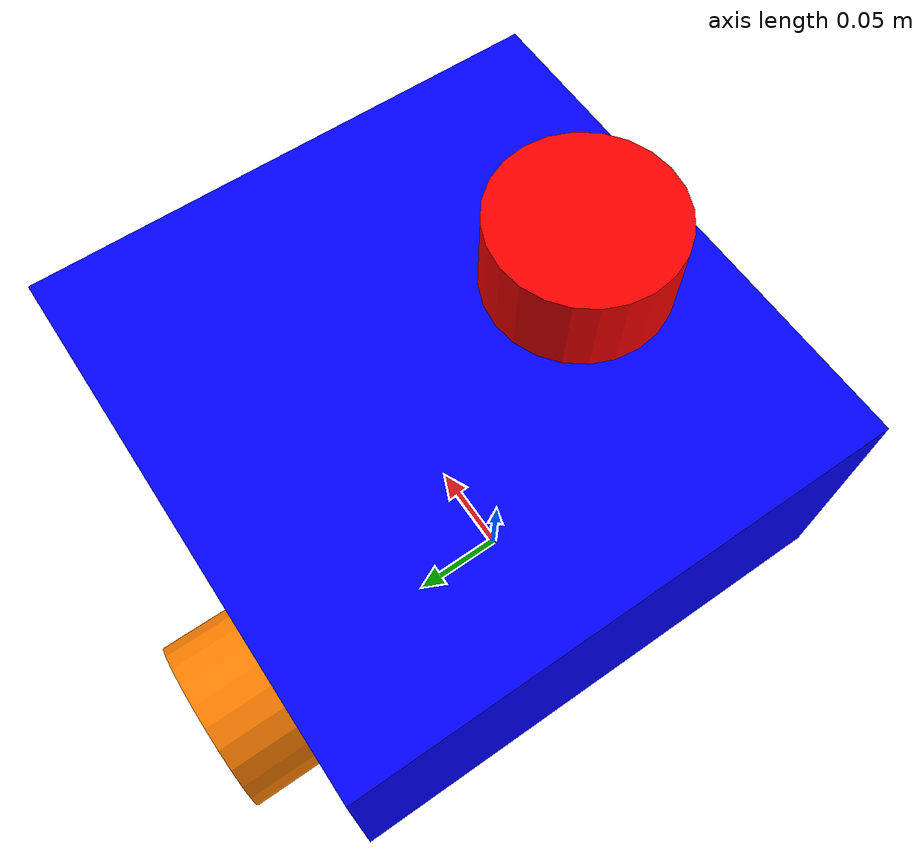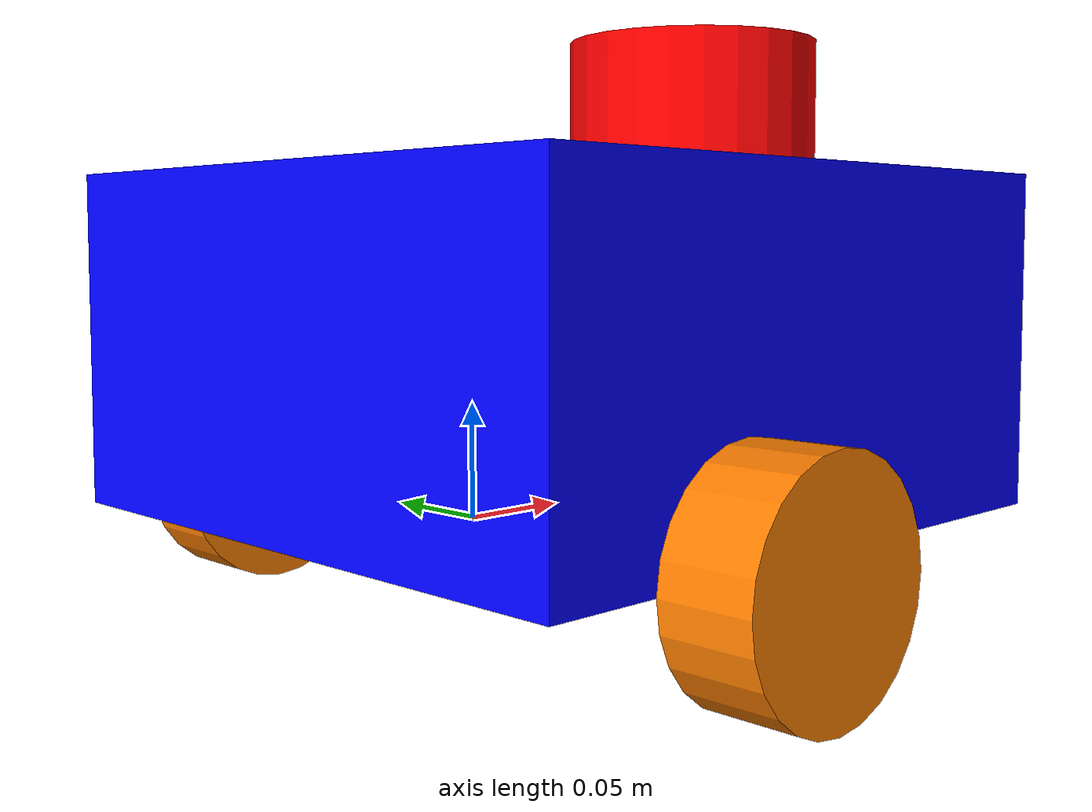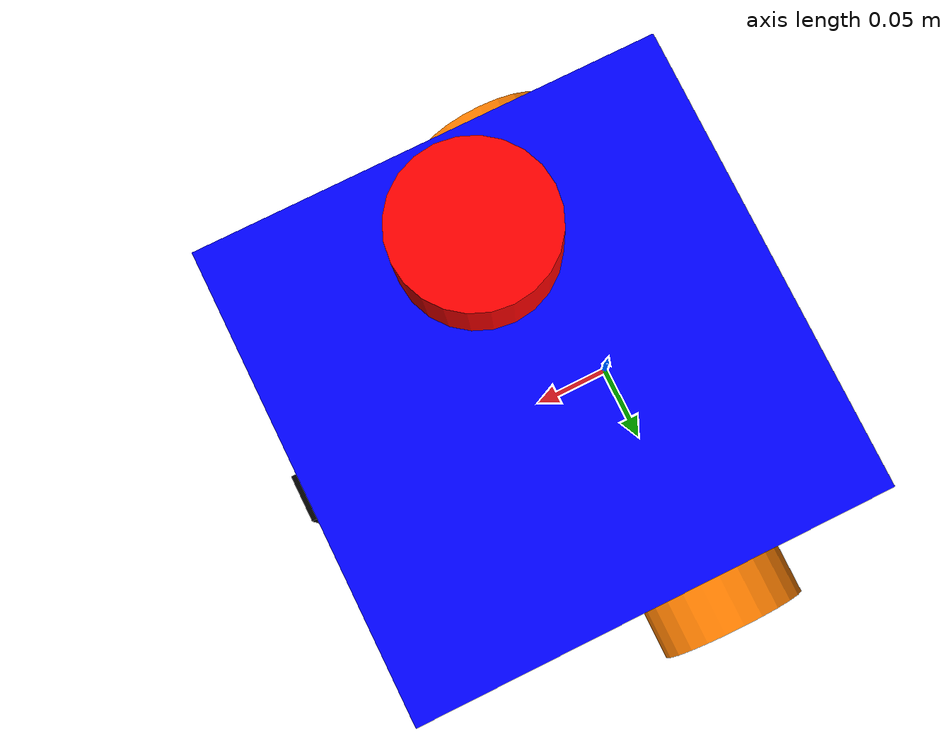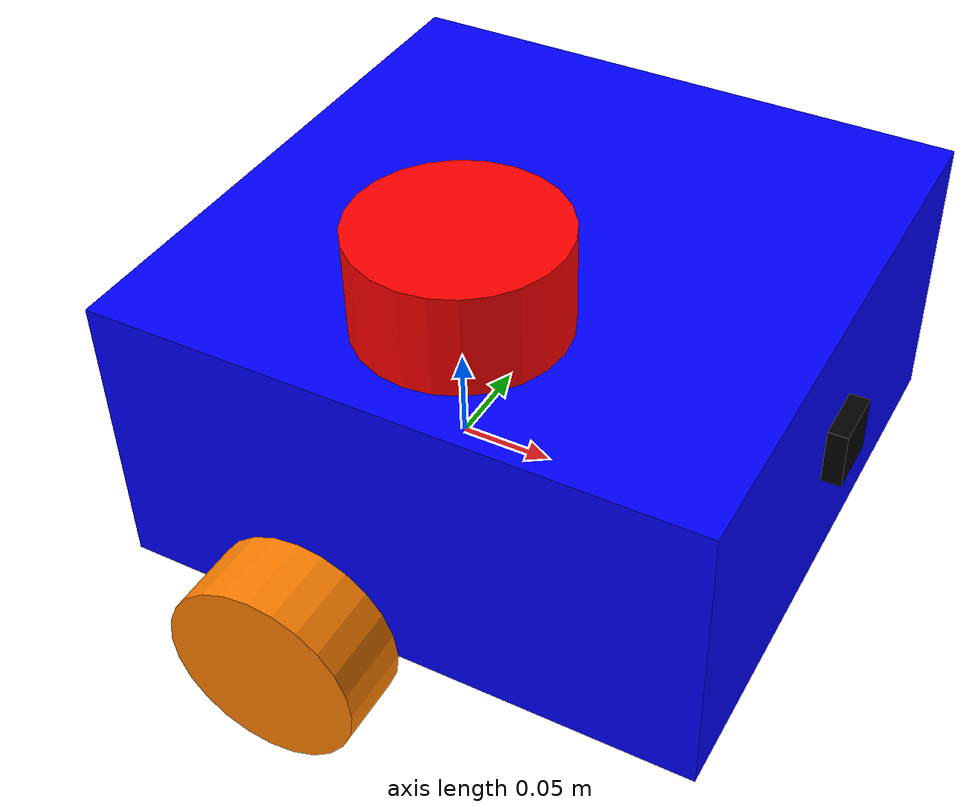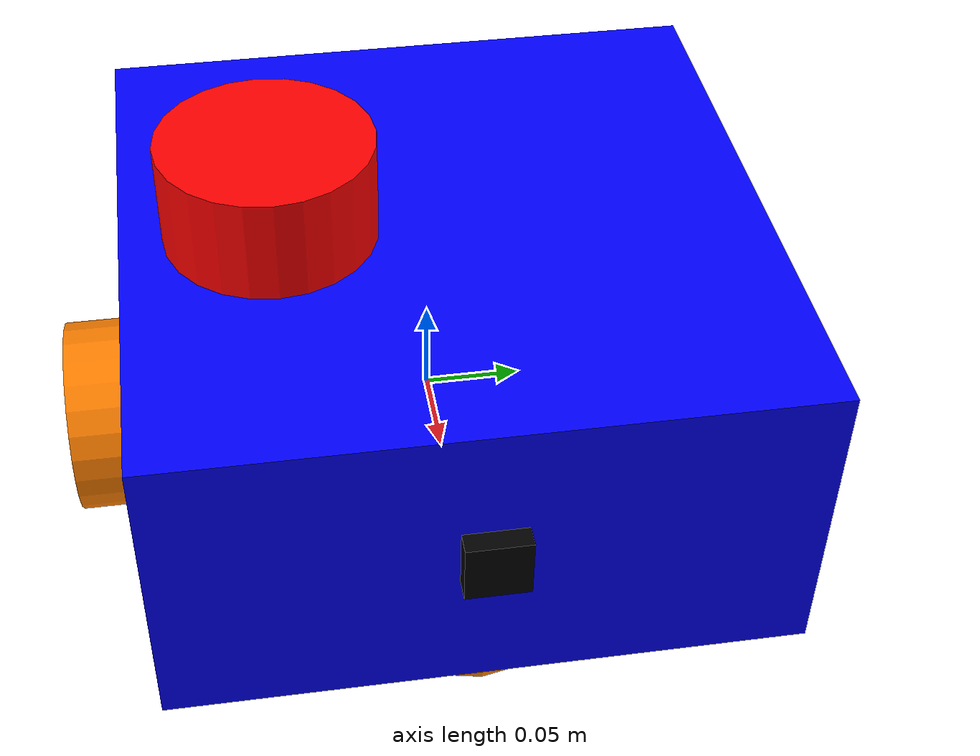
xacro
<?xml version="1.0"?>
<robot xmlns:xacro="http://www.ros.org/wiki/xacro"  name="robot">

    <xacro:arg name="use_ros2_control" default="true"/>
    <xacro:include filename="robot_core.xacro"/>

    <xacro:if value="$(arg use_ros2_control)">
        <xacro:include filename="ros2_control.xacro"/>
    </xacro:if>

    <xacro:unless value="$(arg use_ros2_control)">
        <xacro:include filename="gazebo_control.xacro"/>
    </xacro:unless>

    <xacro:include filename="lidar.xacro"/>
    <xacro:include filename="camera.xacro"/>

</robot>

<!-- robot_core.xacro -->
<robot xmlns:xacro="http://www.ros.org/wiki/xacro" >

    <xacro:include filename="inertial_macros.xacro"/>

    <material name="white">
        <color rgba="1 1 1 1"/>
    </material>
    <material name="orange">
        <color rgba="1 0.5 0 1"/>
    </material>
    <material name="black">
        <color rgba="0 0 0 1"/>
    </material>
    <material name="blue">
        <color rgba="0 0 1 1"/>
    </material>
    <material name="red">
        <color rgba="1 0 0 1"/>
    </material>

    <!-- BASE_LINK -->

    <link name="base_link">
    </link>

    <joint name="base_chassis_joint" type="fixed">
        <parent link="base_link"/>
        <child link="chassis"/>
        <origin xyz="-0.1 0 0" rpy="0 0 0"/>
    </joint>

    <link name="chassis">
        <visual>
            <origin xyz="0.15 0 0.075" rpy="0 0 0"/>
            <geometry>
                <box size="0.3 0.3 0.15"/>
            </geometry>
            <material name="blue"/>
        </visual>
        <collision>
            <origin xyz="0.15 0 0.075" rpy="0 0 0"/>
            <geometry>
                <box size="0.3 0.3 0.15"/>
            </geometry>
        </collision>
        <xacro:inertial_box mass="0.5" x="0.3" y="0.3" z="0.15">
            <origin xyz="0.15 0 0.075" rpy="0 0 0"/>
        </xacro:inertial_box>
    </link>

    <gazebo reference="chassis">
        <material>Gazebo/Blue</material>
    </gazebo>

    <!-- LEFT_WHEEL_LINK -->

    <joint name="left_wheel_joint" type="continuous">
        <parent link="base_link"/>
        <child link="left_wheel"/>
        <origin xyz="0 0.17 0" rpy="-1.57 0 0"/>
        <axis xyz="0 0 1"/>
    </joint>

    <link name="left_wheel">
        <visual>
            <geometry>
                <cylinder radius="0.05" length="0.04"/>
            </geometry>
            <material name="orange"/>
        </visual>
        <collision>
            <geometry>
                <sphere radius="0.05"/>
            </geometry>
        </collision>
        <xacro:inertial_cylinder mass="0.1" length="0.04" radius="0.05">
            <origin xyz="0 0 0" rpy="0 0 0"/>
        </xacro:inertial_cylinder>
    </link>

    <gazebo reference="left_wheel">
        <material>Gazebo/Orange</material>
    </gazebo>

    <!-- RIGHT_WHEEL_LINK -->

    <joint name="right_wheel_joint" type="continuous">
        <parent link="base_link"/>
        <child link="right_wheel"/>
        <origin xyz="0 -0.17 0" rpy="-1.57 0 0"/>
        <axis xyz="0 0 1"/>
    </joint>
    <link name="right_wheel">
        <visual>
            <geometry>
                <cylinder radius="0.05" length="0.04"/>
            </geometry>
            <material name="orange"/>
        </visual>
        <collision>
            <geometry>
                <sphere radius="0.05" />
            </geometry>
        </collision>
        <xacro:inertial_cylinder mass="0.1" length="0.04" radius="0.05">
            <origin xyz="0 0 0" rpy="0 0 0"/>
        </xacro:inertial_cylinder>
    </link>

    <gazebo reference="right_wheel">
        <material>Gazebo/Orange</material>
    </gazebo>

    <!-- CASTER_WHEEL_LINK -->
    <joint name="caster_wheel_joint" type="fixed">
        <parent link="chassis"/>
        <child link="caster_wheel"/>
        <origin xyz="0.24 0 0" rpy="-1.57 0 0"/>
    </joint>
    <link name="caster_wheel">
        <visual>
            <geometry>
                <sphere radius="0.05" />
            </geometry>
            <material name="orange"/>
        </visual>
        <collision>
            <geometry>
                <sphere radius="0.05" />
            </geometry>
        </collision>
        <xacro:inertial_sphere mass="0.1" radius="0.05">
            <origin xyz="0 0 0" rpy="0 0 0"/>
        </xacro:inertial_sphere>
    </link>

    <gazebo reference="caster_wheel">
        <material>Gazebo/Orange</material>
        <mu1 value="0.001"/>
        <mu2 value="0.001"/>
    </gazebo>
</robot>

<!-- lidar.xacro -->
<robot xmlns:xacro="http://www.ros.org/wiki/xacro">

    <joint name="lidar_joint" type="fixed">
        <origin xyz="0.15 -0.08 0.15" rpy="0 0 0"/>
        <parent link="chassis"/>
        <child link="laser_frame"/>
    </joint>

    <link name="laser_frame">
        <visual>
            <origin xyz="0 0 0.025" rpy="0 0 0"/>
            <geometry>
                <cylinder radius="0.05" length="0.05"/>
            </geometry>
            <material name="red"/>
        </visual>
        <collision>
            <origin xyz="0 0 0" rpy="0 0 0"/>
            <geometry>
                <cylinder radius="0.05" length="0.1"/>
            </geometry>
        </collision>
        <xacro:inertial_cylinder mass="1.5" radius="0.05" length="0.1">
            <origin xyz="0 0 0" rpy="0 0 0"/>
        </xacro:inertial_cylinder>
    </link>

    <gazebo reference="laser_frame">
        <material>Gazebo/Red</material>
        <sensor name="laser" type="ray">
            <pose>0 0 0 0 0 0</pose>
            <visualize>true</visualize>
            <update_rate>10</update_rate>
            <ray>
                <scan>
                    <horizontal>
                        <samples>360</samples>
                        <resolution>1</resolution>
                        <min_angle>-3.14</min_angle>
                        <max_angle>3.14</max_angle>
                    </horizontal>
                </scan>
                <range>
                    <min>0.3</min>
                    <max>12</max>
                    <resolution>0.01</resolution>
                </range>
            </ray>
            <plugin name="laser_controller" filename="libgazebo_ros_ray_sensor.so">

                <ros>
                    <remapping>~/out:=/scan</remapping>
                </ros>
                <output_type>sensor_msgs/LaserScan</output_type>
                <frameName>laser_frame</frameName>
            </plugin>
        </sensor>
    </gazebo>

</robot>

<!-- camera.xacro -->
<robot xmlns:xacro="http://www.ros.org/wiki/xacro" >

    <joint name="camera_joint" type="fixed">
        <origin xyz="0.305 0 0.08" rpy="0 0 0"/>
        <parent link="chassis"/>
        <child link="camera_link"/>
    </joint>

    <link name="camera_link">
        <visual>
            <origin xyz="0 0 0" rpy="0 0 0"/>
            <geometry>
                <box size="0.01 0.03 0.03"/>
            </geometry>
            <material name="black"/>
        </visual>
        <collision>
            <origin xyz="0 0 0" rpy="0 0 0"/>
            <geometry>
                <box size="0.01 0.03 0.03"/>
            </geometry>
        </collision>
        <xacro:inertial_box mass="0.05" x="0.01" y="0.03" z="0.03">
            <origin xyz="0 0 0" rpy="0 0 0"/>
        </xacro:inertial_box>
    </link>

    <joint name="camera_optical_joint" type="fixed">
        <origin xyz="0 0 0" rpy="${-pi/2} 0 ${pi/2}"/>
        <parent link="camera_link"/>
        <child link="camera_optical_frame"/>
    </joint>

    <link name="camera_optical_frame">
    </link>

    <gazebo reference="camera_link">
        <material>Gazebo/Black</material>
        <sensor name="camera" type="camera">
            <pose>0 0 0 0 0 0</pose>
            <visualize>true</visualize>
            <update_rate>10</update_rate>
            <camera>
                <horizontal_fov>1.3962634</horizontal_fov>
                <image>
                    <format>R8G8B8</format>
                    <width>640</width>
                    <height>480</height>
                </image>
                <clip>
                    <near>0.05</near>
                    <far>10</far>
                </clip>
            </camera>
            <plugin name="camera_controller" filename="libgazebo_ros_camera.so">
                <frameName>camera_optical_frame</frameName>
            </plugin>
        </sensor>
    </gazebo>
</robot>
